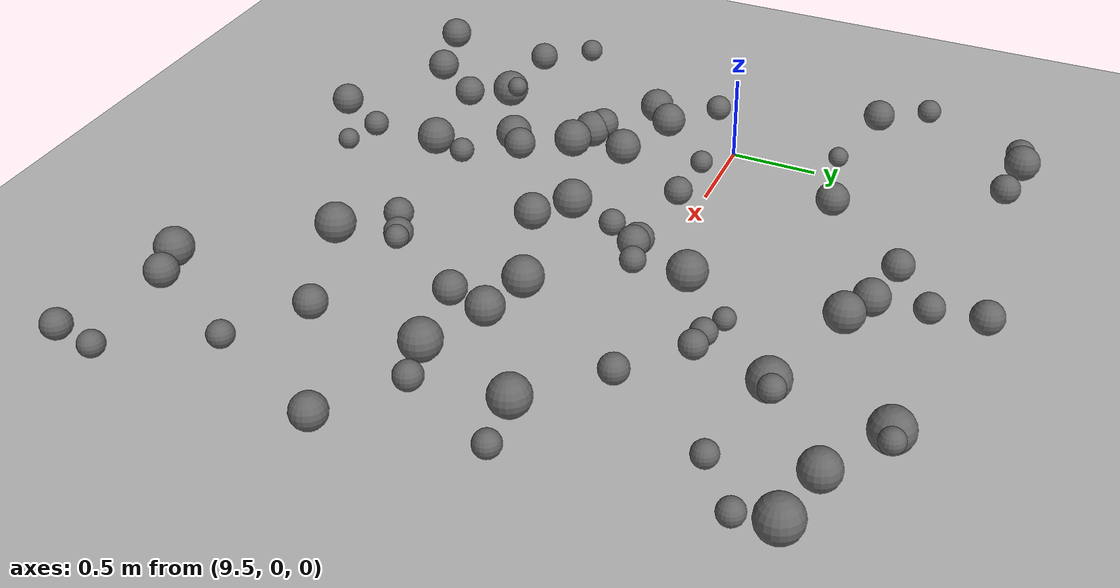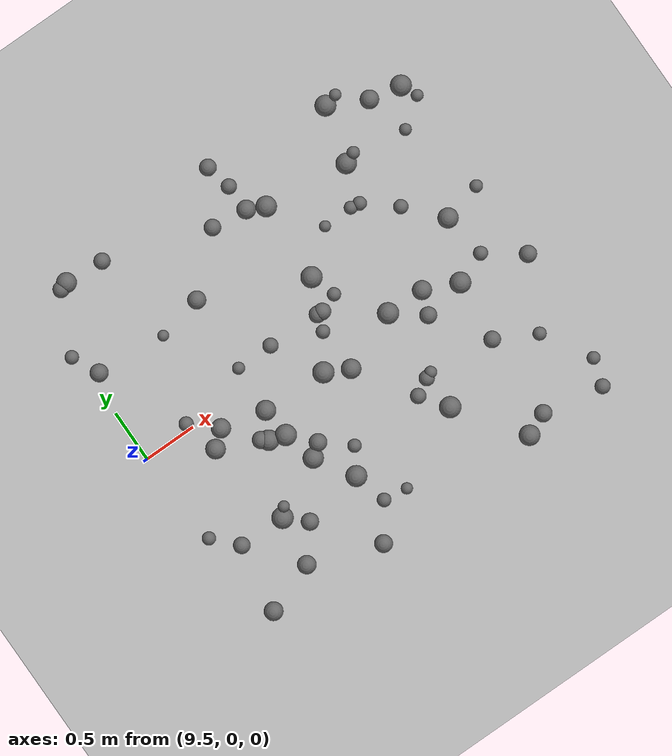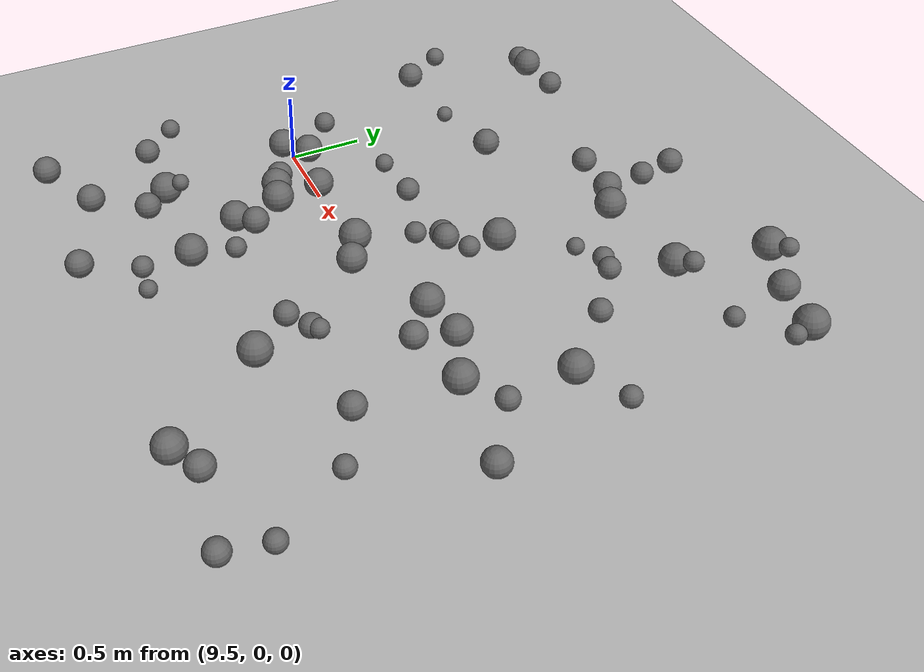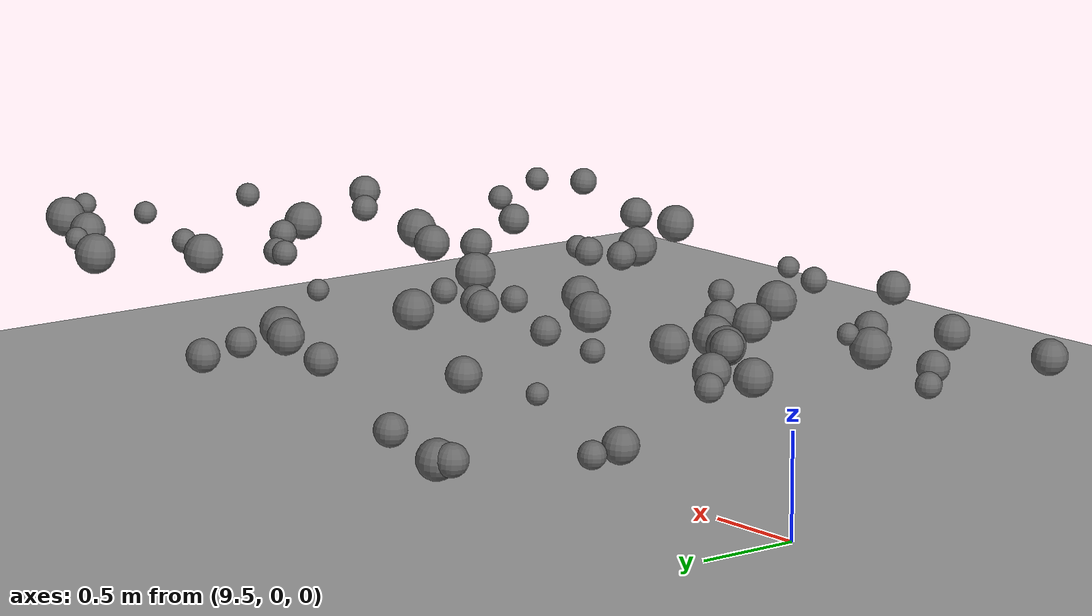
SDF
<sdf version="1.8">
 <world name="extreme_disturbance_parkour">
  <model name="ground_plane">
   <static>true</static>
   <link name="link">
    <collision name="collision">
     <geometry><plane><normal>0 0 1</normal><size>100 100</size></plane></geometry>
     <surface><friction><ode><mu>1.5</mu><mu2>1.5</mu2></ode></friction></surface>
    </collision>
    <visual name="visual">
     <geometry><plane><normal>0 0 1</normal><size>100 100</size></plane></geometry>
     <material><ambient>0.7 0.7 0.7 1</ambient><diffuse>0.7 0.7 0.7 1</diffuse></material>
    </visual>
   </link>
  </model>
  <model name="stone_1">
   <static>true</static>
   <pose>10.0039 0.0550 0.6089 0.0000 -0.1000 0.0000</pose>
   <link name="link">
    <collision name="collision">
     <geometry><sphere><radius>0.0667</radius></sphere></geometry>
     <surface><friction><ode><mu>100.0</mu><mu2>100.0</mu2></ode></friction></surface>
    </collision>
    <visual name="visual">
     <geometry><sphere><radius>0.0667</radius></sphere></geometry>
     <material><ambient>0.3 0.3 0.3 1</ambient><diffuse>0.4 0.4 0.4 1</diffuse></material>
    </visual>
   </link>
  </model>
  <model name="stone_5">
   <static>true</static>
   <pose>11.7191 0.2417 0.7836 0.0000 -0.1000 0.0000</pose>
   <link name="link">
    <collision name="collision">
     <geometry><sphere><radius>0.0618</radius></sphere></geometry>
     <surface><friction><ode><mu>100.0</mu><mu2>100.0</mu2></ode></friction></surface>
    </collision>
    <visual name="visual">
     <geometry><sphere><radius>0.0618</radius></sphere></geometry>
     <material><ambient>0.3 0.3 0.3 1</ambient><diffuse>0.4 0.4 0.4 1</diffuse></material>
    </visual>
   </link>
  </model>
  <model name="stone_6">
   <static>true</static>
   <pose>11.9863 -1.1465 0.7763 0.0000 -0.1000 0.0000</pose>
   <link name="link">
    <collision name="collision">
     <geometry><sphere><radius>0.0970</radius></sphere></geometry>
     <surface><friction><ode><mu>100.0</mu><mu2>100.0</mu2></ode></friction></surface>
    </collision>
    <visual name="visual">
     <geometry><sphere><radius>0.0970</radius></sphere></geometry>
     <material><ambient>0.3 0.3 0.3 1</ambient><diffuse>0.4 0.4 0.4 1</diffuse></material>
    </visual>
   </link>
  </model>
  <model name="stone_12">
   <static>true</static>
   <pose>11.1829 1.3310 0.7065 0.0000 -0.1000 0.0000</pose>
   <link name="link">
    <collision name="collision">
     <geometry><sphere><radius>0.0766</radius></sphere></geometry>
     <surface><friction><ode><mu>100.0</mu><mu2>100.0</mu2></ode></friction></surface>
    </collision>
    <visual name="visual">
     <geometry><sphere><radius>0.0766</radius></sphere></geometry>
     <material><ambient>0.3 0.3 0.3 1</ambient><diffuse>0.4 0.4 0.4 1</diffuse></material>
    </visual>
   </link>
  </model>
  <model name="stone_13">
   <static>true</static>
   <pose>10.1640 -1.5656 0.6086 0.0000 -0.1000 0.0000</pose>
   <link name="link">
    <collision name="collision">
     <geometry><sphere><radius>0.0853</radius></sphere></geometry>
     <surface><friction><ode><mu>100.0</mu><mu2>100.0</mu2></ode></friction></surface>
    </collision>
    <visual name="visual">
     <geometry><sphere><radius>0.0853</radius></sphere></geometry>
     <material><ambient>0.3 0.3 0.3 1</ambient><diffuse>0.4 0.4 0.4 1</diffuse></material>
    </visual>
   </link>
  </model>
  <model name="stone_18">
   <static>true</static>
   <pose>9.5118 1.1131 0.5669 0.0000 -0.1000 0.0000</pose>
   <link name="link">
    <collision name="collision">
     <geometry><sphere><radius>0.0633</radius></sphere></geometry>
     <surface><friction><ode><mu>100.0</mu><mu2>100.0</mu2></ode></friction></surface>
    </collision>
    <visual name="visual">
     <geometry><sphere><radius>0.0633</radius></sphere></geometry>
     <material><ambient>0.3 0.3 0.3 1</ambient><diffuse>0.4 0.4 0.4 1</diffuse></material>
    </visual>
   </link>
  </model>
  <model name="stone_19">
   <static>true</static>
   <pose>10.2241 -1.1076 0.5861 0.0000 -0.1000 0.0000</pose>
   <link name="link">
    <collision name="collision">
     <geometry><sphere><radius>0.0982</radius></sphere></geometry>
     <surface><friction><ode><mu>100.0</mu><mu2>100.0</mu2></ode></friction></surface>
    </collision>
    <visual name="visual">
     <geometry><sphere><radius>0.0982</radius></sphere></geometry>
     <material><ambient>0.3 0.3 0.3 1</ambient><diffuse>0.4 0.4 0.4 1</diffuse></material>
    </visual>
   </link>
  </model>
  <model name="stone_20">
   <static>true</static>
   <pose>11.5009 0.1807 0.7408 0.0000 -0.1000 0.0000</pose>
   <link name="link">
    <collision name="collision">
     <geometry><sphere><radius>0.0770</radius></sphere></geometry>
     <surface><friction><ode><mu>100.0</mu><mu2>100.0</mu2></ode></friction></surface>
    </collision>
    <visual name="visual">
     <geometry><sphere><radius>0.0770</radius></sphere></geometry>
     <material><ambient>0.3 0.3 0.3 1</ambient><diffuse>0.4 0.4 0.4 1</diffuse></material>
    </visual>
   </link>
  </model>
  <model name="stone_23">
   <static>true</static>
   <pose>12.0195 -0.7975 0.8147 0.0000 -0.1000 0.0000</pose>
   <link name="link">
    <collision name="collision">
     <geometry><sphere><radius>0.0561</radius></sphere></geometry>
     <surface><friction><ode><mu>100.0</mu><mu2>100.0</mu2></ode></friction></surface>
    </collision>
    <visual name="visual">
     <geometry><sphere><radius>0.0561</radius></sphere></geometry>
     <material><ambient>0.3 0.3 0.3 1</ambient><diffuse>0.4 0.4 0.4 1</diffuse></material>
    </visual>
   </link>
  </model>
  <model name="stone_26">
   <static>true</static>
   <pose>10.7482 -0.8293 0.6526 0.0000 -0.1000 0.0000</pose>
   <link name="link">
    <collision name="collision">
     <geometry><sphere><radius>0.0933</radius></sphere></geometry>
     <surface><friction><ode><mu>100.0</mu><mu2>100.0</mu2></ode></friction></surface>
    </collision>
    <visual name="visual">
     <geometry><sphere><radius>0.0933</radius></sphere></geometry>
     <material><ambient>0.3 0.3 0.3 1</ambient><diffuse>0.4 0.4 0.4 1</diffuse></material>
    </visual>
   </link>
  </model>
  <model name="stone_27">
   <static>true</static>
   <pose>11.4536 0.0299 0.7607 0.0000 -0.1000 0.0000</pose>
   <link name="link">
    <collision name="collision">
     <geometry><sphere><radius>0.0632</radius></sphere></geometry>
     <surface><friction><ode><mu>100.0</mu><mu2>100.0</mu2></ode></friction></surface>
    </collision>
    <visual name="visual">
     <geometry><sphere><radius>0.0632</radius></sphere></geometry>
     <material><ambient>0.3 0.3 0.3 1</ambient><diffuse>0.4 0.4 0.4 1</diffuse></material>
    </visual>
   </link>
  </model>
  <model name="stone_28">
   <static>true</static>
   <pose>10.6470 -0.2477 0.6514 0.0000 -0.1000 0.0000</pose>
   <link name="link">
    <collision name="collision">
     <geometry><sphere><radius>0.0914</radius></sphere></geometry>
     <surface><friction><ode><mu>100.0</mu><mu2>100.0</mu2></ode></friction></surface>
    </collision>
    <visual name="visual">
     <geometry><sphere><radius>0.0914</radius></sphere></geometry>
     <material><ambient>0.3 0.3 0.3 1</ambient><diffuse>0.4 0.4 0.4 1</diffuse></material>
    </visual>
   </link>
  </model>
  <model name="stone_29">
   <static>true</static>
   <pose>11.6739 1.2102 0.7517 0.0000 -0.1000 0.0000</pose>
   <link name="link">
    <collision name="collision">
     <geometry><sphere><radius>0.0941</radius></sphere></geometry>
     <surface><friction><ode><mu>100.0</mu><mu2>100.0</mu2></ode></friction></surface>
    </collision>
    <visual name="visual">
     <geometry><sphere><radius>0.0941</radius></sphere></geometry>
     <material><ambient>0.3 0.3 0.3 1</ambient><diffuse>0.4 0.4 0.4 1</diffuse></material>
    </visual>
   </link>
  </model>
  <model name="stone_30">
   <static>true</static>
   <pose>9.7909 -1.1007 0.5772 0.0000 -0.1000 0.0000</pose>
   <link name="link">
    <collision name="collision">
     <geometry><sphere><radius>0.0772</radius></sphere></geometry>
     <surface><friction><ode><mu>100.0</mu><mu2>100.0</mu2></ode></friction></surface>
    </collision>
    <visual name="visual">
     <geometry><sphere><radius>0.0772</radius></sphere></geometry>
     <material><ambient>0.3 0.3 0.3 1</ambient><diffuse>0.4 0.4 0.4 1</diffuse></material>
    </visual>
   </link>
  </model>
  <model name="stone_32">
   <static>true</static>
   <pose>9.8498 1.6785 0.5675 0.0000 -0.1000 0.0000</pose>
   <link name="link">
    <collision name="collision">
     <geometry><sphere><radius>0.0921</radius></sphere></geometry>
     <surface><friction><ode><mu>100.0</mu><mu2>100.0</mu2></ode></friction></surface>
    </collision>
    <visual name="visual">
     <geometry><sphere><radius>0.0921</radius></sphere></geometry>
     <material><ambient>0.3 0.3 0.3 1</ambient><diffuse>0.4 0.4 0.4 1</diffuse></material>
    </visual>
   </link>
  </model>
  <model name="stone_33">
   <static>true</static>
   <pose>9.5877 -0.8852 0.5619 0.0000 -0.1000 0.0000</pose>
   <link name="link">
    <collision name="collision">
     <geometry><sphere><radius>0.0619</radius></sphere></geometry>
     <surface><friction><ode><mu>100.0</mu><mu2>100.0</mu2></ode></friction></surface>
    </collision>
    <visual name="visual">
     <geometry><sphere><radius>0.0619</radius></sphere></geometry>
     <material><ambient>0.3 0.3 0.3 1</ambient><diffuse>0.4 0.4 0.4 1</diffuse></material>
    </visual>
   </link>
  </model>
  <model name="stone_35">
   <static>true</static>
   <pose>10.9681 -1.1745 0.6739 0.0000 -0.1000 0.0000</pose>
   <link name="link">
    <collision name="collision">
     <geometry><sphere><radius>0.0961</radius></sphere></geometry>
     <surface><friction><ode><mu>100.0</mu><mu2>100.0</mu2></ode></friction></surface>
    </collision>
    <visual name="visual">
     <geometry><sphere><radius>0.0961</radius></sphere></geometry>
     <material><ambient>0.3 0.3 0.3 1</ambient><diffuse>0.4 0.4 0.4 1</diffuse></material>
    </visual>
   </link>
  </model>
  <model name="stone_37">
   <static>true</static>
   <pose>10.2843 0.8051 0.6389 0.0000 -0.1000 0.0000</pose>
   <link name="link">
    <collision name="collision">
     <geometry><sphere><radius>0.0508</radius></sphere></geometry>
     <surface><friction><ode><mu>100.0</mu><mu2>100.0</mu2></ode></friction></surface>
    </collision>
    <visual name="visual">
     <geometry><sphere><radius>0.0508</radius></sphere></geometry>
     <material><ambient>0.3 0.3 0.3 1</ambient><diffuse>0.4 0.4 0.4 1</diffuse></material>
    </visual>
   </link>
  </model>
  <model name="stone_40">
   <static>true</static>
   <pose>10.2325 -0.1514 0.6092 0.0000 -0.1000 0.0000</pose>
   <link name="link">
    <collision name="collision">
     <geometry><sphere><radius>0.0893</radius></sphere></geometry>
     <surface><friction><ode><mu>100.0</mu><mu2>100.0</mu2></ode></friction></surface>
    </collision>
    <visual name="visual">
     <geometry><sphere><radius>0.0893</radius></sphere></geometry>
     <material><ambient>0.3 0.3 0.3 1</ambient><diffuse>0.4 0.4 0.4 1</diffuse></material>
    </visual>
   </link>
  </model>
  <model name="stone_41">
   <static>true</static>
   <pose>11.5058 1.5406 0.7559 0.0000 -0.1000 0.0000</pose>
   <link name="link">
    <collision name="collision">
     <geometry><sphere><radius>0.0701</radius></sphere></geometry>
     <surface><friction><ode><mu>100.0</mu><mu2>100.0</mu2></ode></friction></surface>
    </collision>
    <visual name="visual">
     <geometry><sphere><radius>0.0701</radius></sphere></geometry>
     <material><ambient>0.3 0.3 0.3 1</ambient><diffuse>0.4 0.4 0.4 1</diffuse></material>
    </visual>
   </link>
  </model>
  <model name="stone_42">
   <static>true</static>
   <pose>10.2178 1.6508 0.6196 0.0000 -0.1000 0.0000</pose>
   <link name="link">
    <collision name="collision">
     <geometry><sphere><radius>0.0754</radius></sphere></geometry>
     <surface><friction><ode><mu>100.0</mu><mu2>100.0</mu2></ode></friction></surface>
    </collision>
    <visual name="visual">
     <geometry><sphere><radius>0.0754</radius></sphere></geometry>
     <material><ambient>0.3 0.3 0.3 1</ambient><diffuse>0.4 0.4 0.4 1</diffuse></material>
    </visual>
   </link>
  </model>
  <model name="stone_43">
   <static>true</static>
   <pose>10.8251 -1.7958 0.6783 0.0000 -0.1000 0.0000</pose>
   <link name="link">
    <collision name="collision">
     <geometry><sphere><radius>0.0821</radius></sphere></geometry>
     <surface><friction><ode><mu>100.0</mu><mu2>100.0</mu2></ode></friction></surface>
    </collision>
    <visual name="visual">
     <geometry><sphere><radius>0.0821</radius></sphere></geometry>
     <material><ambient>0.3 0.3 0.3 1</ambient><diffuse>0.4 0.4 0.4 1</diffuse></material>
    </visual>
   </link>
  </model>
  <model name="stone_45">
   <static>true</static>
   <pose>10.6666 -0.5256 0.6468 0.0000 -0.1000 0.0000</pose>
   <link name="link">
    <collision name="collision">
     <geometry><sphere><radius>0.0976</radius></sphere></geometry>
     <surface><friction><ode><mu>100.0</mu><mu2>100.0</mu2></ode></friction></surface>
    </collision>
    <visual name="visual">
     <geometry><sphere><radius>0.0976</radius></sphere></geometry>
     <material><ambient>0.3 0.3 0.3 1</ambient><diffuse>0.4 0.4 0.4 1</diffuse></material>
    </visual>
   </link>
  </model>
  <model name="stone_46">
   <static>true</static>
   <pose>9.7780 1.6553 0.5763 0.0000 -0.1000 0.0000</pose>
   <link name="link">
    <collision name="collision">
     <geometry><sphere><radius>0.0758</radius></sphere></geometry>
     <surface><friction><ode><mu>100.0</mu><mu2>100.0</mu2></ode></friction></surface>
    </collision>
    <visual name="visual">
     <geometry><sphere><radius>0.0758</radius></sphere></geometry>
     <material><ambient>0.3 0.3 0.3 1</ambient><diffuse>0.4 0.4 0.4 1</diffuse></material>
    </visual>
   </link>
  </model>
  <model name="stone_47">
   <static>true</static>
   <pose>12.0115 -0.1642 0.7707 0.0000 -0.1000 0.0000</pose>
   <link name="link">
    <collision name="collision">
     <geometry><sphere><radius>0.0964</radius></sphere></geometry>
     <surface><friction><ode><mu>100.0</mu><mu2>100.0</mu2></ode></friction></surface>
    </collision>
    <visual name="visual">
     <geometry><sphere><radius>0.0964</radius></sphere></geometry>
     <material><ambient>0.3 0.3 0.3 1</ambient><diffuse>0.4 0.4 0.4 1</diffuse></material>
    </visual>
   </link>
  </model>
  <model name="stone_49">
   <static>true</static>
   <pose>9.6868 -1.7377 0.5513 0.0000 -0.1000 0.0000</pose>
   <link name="link">
    <collision name="collision">
     <geometry><sphere><radius>0.0868</radius></sphere></geometry>
     <surface><friction><ode><mu>100.0</mu><mu2>100.0</mu2></ode></friction></surface>
    </collision>
    <visual name="visual">
     <geometry><sphere><radius>0.0868</radius></sphere></geometry>
     <material><ambient>0.3 0.3 0.3 1</ambient><diffuse>0.4 0.4 0.4 1</diffuse></material>
    </visual>
   </link>
  </model>
  <model name="stone_50">
   <static>true</static>
   <pose>11.2524 -0.2642 0.6929 0.0000 -0.1000 0.0000</pose>
   <link name="link">
    <collision name="collision">
     <geometry><sphere><radius>0.0968</radius></sphere></geometry>
     <surface><friction><ode><mu>100.0</mu><mu2>100.0</mu2></ode></friction></surface>
    </collision>
    <visual name="visual">
     <geometry><sphere><radius>0.0968</radius></sphere></geometry>
     <material><ambient>0.3 0.3 0.3 1</ambient><diffuse>0.4 0.4 0.4 1</diffuse></material>
    </visual>
   </link>
  </model>
  <model name="stone_53">
   <static>true</static>
   <pose>11.4695 -0.3773 0.7248 0.0000 -0.1000 0.0000</pose>
   <link name="link">
    <collision name="collision">
     <geometry><sphere><radius>0.0893</radius></sphere></geometry>
     <surface><friction><ode><mu>100.0</mu><mu2>100.0</mu2></ode></friction></surface>
    </collision>
    <visual name="visual">
     <geometry><sphere><radius>0.0893</radius></sphere></geometry>
     <material><ambient>0.3 0.3 0.3 1</ambient><diffuse>0.4 0.4 0.4 1</diffuse></material>
    </visual>
   </link>
  </model>
  <model name="stone_55">
   <static>true</static>
   <pose>10.8614 -0.7398 0.6738 0.0000 -0.1000 0.0000</pose>
   <link name="link">
    <collision name="collision">
     <geometry><sphere><radius>0.0810</radius></sphere></geometry>
     <surface><friction><ode><mu>100.0</mu><mu2>100.0</mu2></ode></friction></surface>
    </collision>
    <visual name="visual">
     <geometry><sphere><radius>0.0810</radius></sphere></geometry>
     <material><ambient>0.3 0.3 0.3 1</ambient><diffuse>0.4 0.4 0.4 1</diffuse></material>
    </visual>
   </link>
  </model>
  <model name="stone_58">
   <static>true</static>
   <pose>11.1083 -0.9459 0.7224 0.0000 -0.1000 0.0000</pose>
   <link name="link">
    <collision name="collision">
     <geometry><sphere><radius>0.0616</radius></sphere></geometry>
     <surface><friction><ode><mu>100.0</mu><mu2>100.0</mu2></ode></friction></surface>
    </collision>
    <visual name="visual">
     <geometry><sphere><radius>0.0616</radius></sphere></geometry>
     <material><ambient>0.3 0.3 0.3 1</ambient><diffuse>0.4 0.4 0.4 1</diffuse></material>
    </visual>
   </link>
  </model>
  <model name="stone_60">
   <static>true</static>
   <pose>11.0488 -1.4825 0.7199 0.0000 -0.1000 0.0000</pose>
   <link name="link">
    <collision name="collision">
     <geometry><sphere><radius>0.0637</radius></sphere></geometry>
     <surface><friction><ode><mu>100.0</mu><mu2>100.0</mu2></ode></friction></surface>
    </collision>
    <visual name="visual">
     <geometry><sphere><radius>0.0637</radius></sphere></geometry>
     <material><ambient>0.3 0.3 0.3 1</ambient><diffuse>0.4 0.4 0.4 1</diffuse></material>
    </visual>
   </link>
  </model>
  <model name="stone_67">
   <static>true</static>
   <pose>10.4041 -1.2712 0.6272 0.0000 -0.1000 0.0000</pose>
   <link name="link">
    <collision name="collision">
     <geometry><sphere><radius>0.0801</radius></sphere></geometry>
     <surface><friction><ode><mu>100.0</mu><mu2>100.0</mu2></ode></friction></surface>
    </collision>
    <visual name="visual">
     <geometry><sphere><radius>0.0801</radius></sphere></geometry>
     <material><ambient>0.3 0.3 0.3 1</ambient><diffuse>0.4 0.4 0.4 1</diffuse></material>
    </visual>
   </link>
  </model>
  <model name="stone_68">
   <static>true</static>
   <pose>10.6639 0.1913 0.6769 0.0000 -0.1000 0.0000</pose>
   <link name="link">
    <collision name="collision">
     <geometry><sphere><radius>0.0567</radius></sphere></geometry>
     <surface><friction><ode><mu>100.0</mu><mu2>100.0</mu2></ode></friction></surface>
    </collision>
    <visual name="visual">
     <geometry><sphere><radius>0.0567</radius></sphere></geometry>
     <material><ambient>0.3 0.3 0.3 1</ambient><diffuse>0.4 0.4 0.4 1</diffuse></material>
    </visual>
   </link>
  </model>
  <model name="stone_69">
   <static>true</static>
   <pose>11.2702 -1.5127 0.7431 0.0000 -0.1000 0.0000</pose>
   <link name="link">
    <collision name="collision">
     <geometry><sphere><radius>0.0530</radius></sphere></geometry>
     <surface><friction><ode><mu>100.0</mu><mu2>100.0</mu2></ode></friction></surface>
    </collision>
    <visual name="visual">
     <geometry><sphere><radius>0.0530</radius></sphere></geometry>
     <material><ambient>0.3 0.3 0.3 1</ambient><diffuse>0.4 0.4 0.4 1</diffuse></material>
    </visual>
   </link>
  </model>
  <model name="stone_70">
   <static>true</static>
   <pose>11.8132 -0.9064 0.7894 0.0000 -0.1000 0.0000</pose>
   <link name="link">
    <collision name="collision">
     <geometry><sphere><radius>0.0709</radius></sphere></geometry>
     <surface><friction><ode><mu>100.0</mu><mu2>100.0</mu2></ode></friction></surface>
    </collision>
    <visual name="visual">
     <geometry><sphere><radius>0.0709</radius></sphere></geometry>
     <material><ambient>0.3 0.3 0.3 1</ambient><diffuse>0.4 0.4 0.4 1</diffuse></material>
    </visual>
   </link>
  </model>
  <model name="stone_73">
   <static>true</static>
   <pose>11.5494 0.1773 0.7546 0.0000 -0.1000 0.0000</pose>
   <link name="link">
    <collision name="collision">
     <geometry><sphere><radius>0.0776</radius></sphere></geometry>
     <surface><friction><ode><mu>100.0</mu><mu2>100.0</mu2></ode></friction></surface>
    </collision>
    <visual name="visual">
     <geometry><sphere><radius>0.0776</radius></sphere></geometry>
     <material><ambient>0.3 0.3 0.3 1</ambient><diffuse>0.4 0.4 0.4 1</diffuse></material>
    </visual>
   </link>
  </model>
  <model name="stone_81">
   <static>true</static>
   <pose>10.7056 0.8921 0.6616 0.0000 -0.1000 0.0000</pose>
   <link name="link">
    <collision name="collision">
     <geometry><sphere><radius>0.0834</radius></sphere></geometry>
     <surface><friction><ode><mu>100.0</mu><mu2>100.0</mu2></ode></friction></surface>
    </collision>
    <visual name="visual">
     <geometry><sphere><radius>0.0834</radius></sphere></geometry>
     <material><ambient>0.3 0.3 0.3 1</ambient><diffuse>0.4 0.4 0.4 1</diffuse></material>
    </visual>
   </link>
  </model>
  <model name="stone_89">
   <static>true</static>
   <pose>10.0877 -0.2739 0.5928 0.0000 -0.1000 0.0000</pose>
   <link name="link">
    <collision name="collision">
     <geometry><sphere><radius>0.0906</radius></sphere></geometry>
     <surface><friction><ode><mu>100.0</mu><mu2>100.0</mu2></ode></friction></surface>
    </collision>
    <visual name="visual">
     <geometry><sphere><radius>0.0906</radius></sphere></geometry>
     <material><ambient>0.3 0.3 0.3 1</ambient><diffuse>0.4 0.4 0.4 1</diffuse></material>
    </visual>
   </link>
  </model>
  <model name="stone_97">
   <static>true</static>
   <pose>11.0070 0.1935 0.7097 0.0000 -0.1000 0.0000</pose>
   <link name="link">
    <collision name="collision">
     <geometry><sphere><radius>0.0701</radius></sphere></geometry>
     <surface><friction><ode><mu>100.0</mu><mu2>100.0</mu2></ode></friction></surface>
    </collision>
    <visual name="visual">
     <geometry><sphere><radius>0.0701</radius></sphere></geometry>
     <material><ambient>0.3 0.3 0.3 1</ambient><diffuse>0.4 0.4 0.4 1</diffuse></material>
    </visual>
   </link>
  </model>
  <model name="stone_102">
   <static>true</static>
   <pose>11.9631 -0.8219 0.7969 0.0000 -0.1000 0.0000</pose>
   <link name="link">
    <collision name="collision">
     <geometry><sphere><radius>0.0700</radius></sphere></geometry>
     <surface><friction><ode><mu>100.0</mu><mu2>100.0</mu2></ode></friction></surface>
    </collision>
    <visual name="visual">
     <geometry><sphere><radius>0.0700</radius></sphere></geometry>
     <material><ambient>0.3 0.3 0.3 1</ambient><diffuse>0.4 0.4 0.4 1</diffuse></material>
    </visual>
   </link>
  </model>
  <model name="stone_103">
   <static>true</static>
   <pose>10.5182 -0.4784 0.6315 0.0000 -0.1000 0.0000</pose>
   <link name="link">
    <collision name="collision">
     <geometry><sphere><radius>0.0941</radius></sphere></geometry>
     <surface><friction><ode><mu>100.0</mu><mu2>100.0</mu2></ode></friction></surface>
    </collision>
    <visual name="visual">
     <geometry><sphere><radius>0.0941</radius></sphere></geometry>
     <material><ambient>0.3 0.3 0.3 1</ambient><diffuse>0.4 0.4 0.4 1</diffuse></material>
    </visual>
   </link>
  </model>
  <model name="stone_104">
   <static>true</static>
   <pose>11.5156 1.2890 0.7461 0.0000 -0.1000 0.0000</pose>
   <link name="link">
    <collision name="collision">
     <geometry><sphere><radius>0.0859</radius></sphere></geometry>
     <surface><friction><ode><mu>100.0</mu><mu2>100.0</mu2></ode></friction></surface>
    </collision>
    <visual name="visual">
     <geometry><sphere><radius>0.0859</radius></sphere></geometry>
     <material><ambient>0.3 0.3 0.3 1</ambient><diffuse>0.4 0.4 0.4 1</diffuse></material>
    </visual>
   </link>
  </model>
  <model name="stone_105">
   <static>true</static>
   <pose>10.4632 -0.4366 0.6463 0.0000 -0.1000 0.0000</pose>
   <link name="link">
    <collision name="collision">
     <geometry><sphere><radius>0.0794</radius></sphere></geometry>
     <surface><friction><ode><mu>100.0</mu><mu2>100.0</mu2></ode></friction></surface>
    </collision>
    <visual name="visual">
     <geometry><sphere><radius>0.0794</radius></sphere></geometry>
     <material><ambient>0.3 0.3 0.3 1</ambient><diffuse>0.4 0.4 0.4 1</diffuse></material>
    </visual>
   </link>
  </model>
  <model name="stone_106">
   <static>true</static>
   <pose>11.4513 1.7822 0.7397 0.0000 -0.1000 0.0000</pose>
   <link name="link">
    <collision name="collision">
     <geometry><sphere><radius>0.0773</radius></sphere></geometry>
     <surface><friction><ode><mu>100.0</mu><mu2>100.0</mu2></ode></friction></surface>
    </collision>
    <visual name="visual">
     <geometry><sphere><radius>0.0773</radius></sphere></geometry>
     <material><ambient>0.3 0.3 0.3 1</ambient><diffuse>0.4 0.4 0.4 1</diffuse></material>
    </visual>
   </link>
  </model>
  <model name="stone_107">
   <static>true</static>
   <pose>10.2933 -1.0292 0.6501 0.0000 -0.1000 0.0000</pose>
   <link name="link">
    <collision name="collision">
     <geometry><sphere><radius>0.0527</radius></sphere></geometry>
     <surface><friction><ode><mu>100.0</mu><mu2>100.0</mu2></ode></friction></surface>
    </collision>
    <visual name="visual">
     <geometry><sphere><radius>0.0527</radius></sphere></geometry>
     <material><ambient>0.3 0.3 0.3 1</ambient><diffuse>0.4 0.4 0.4 1</diffuse></material>
    </visual>
   </link>
  </model>
  <model name="stone_109">
   <static>true</static>
   <pose>11.9942 0.7718 0.8113 0.0000 -0.1000 0.0000</pose>
   <link name="link">
    <collision name="collision">
     <geometry><sphere><radius>0.0516</radius></sphere></geometry>
     <surface><friction><ode><mu>100.0</mu><mu2>100.0</mu2></ode></friction></surface>
    </collision>
    <visual name="visual">
     <geometry><sphere><radius>0.0516</radius></sphere></geometry>
     <material><ambient>0.3 0.3 0.3 1</ambient><diffuse>0.4 0.4 0.4 1</diffuse></material>
    </visual>
   </link>
  </model>
  <model name="stone_111">
   <static>true</static>
   <pose>9.6291 0.8640 0.5461 0.0000 -0.1000 0.0000</pose>
   <link name="link">
    <collision name="collision">
     <geometry><sphere><radius>0.0833</radius></sphere></geometry>
     <surface><friction><ode><mu>100.0</mu><mu2>100.0</mu2></ode></friction></surface>
    </collision>
    <visual name="visual">
     <geometry><sphere><radius>0.0833</radius></sphere></geometry>
     <material><ambient>0.3 0.3 0.3 1</ambient><diffuse>0.4 0.4 0.4 1</diffuse></material>
    </visual>
   </link>
  </model>
  <model name="stone_116">
   <static>true</static>
   <pose>11.6443 0.4774 0.7389 0.0000 -0.1000 0.0000</pose>
   <link name="link">
    <collision name="collision">
     <geometry><sphere><radius>0.0966</radius></sphere></geometry>
     <surface><friction><ode><mu>100.0</mu><mu2>100.0</mu2></ode></friction></surface>
    </collision>
    <visual name="visual">
     <geometry><sphere><radius>0.0966</radius></sphere></geometry>
     <material><ambient>0.3 0.3 0.3 1</ambient><diffuse>0.4 0.4 0.4 1</diffuse></material>
    </visual>
   </link>
  </model>
  <model name="stone_121">
   <static>true</static>
   <pose>12.9304 1.4407 1.0330 0.0700 -0.1000 0.0000</pose>
   <link name="link">
    <collision name="collision">
     <geometry><sphere><radius>0.0839</radius></sphere></geometry>
     <surface><friction><ode><mu>100.0</mu><mu2>100.0</mu2></ode></friction></surface>
    </collision>
    <visual name="visual">
     <geometry><sphere><radius>0.0839</radius></sphere></geometry>
     <material><ambient>0.3 0.3 0.3 1</ambient><diffuse>0.4 0.4 0.4 1</diffuse></material>
    </visual>
   </link>
  </model>
  <model name="stone_122">
   <static>true</static>
   <pose>12.4525 1.1062 0.9538 0.0700 -0.1000 0.0000</pose>
   <link name="link">
    <collision name="collision">
     <geometry><sphere><radius>0.0925</radius></sphere></geometry>
     <surface><friction><ode><mu>100.0</mu><mu2>100.0</mu2></ode></friction></surface>
    </collision>
    <visual name="visual">
     <geometry><sphere><radius>0.0925</radius></sphere></geometry>
     <material><ambient>0.3 0.3 0.3 1</ambient><diffuse>0.4 0.4 0.4 1</diffuse></material>
    </visual>
   </link>
  </model>
  <model name="stone_126">
   <static>true</static>
   <pose>13.2848 1.2307 1.0748 0.0700 -0.1000 0.0000</pose>
   <link name="link">
    <collision name="collision">
     <geometry><sphere><radius>0.0546</radius></sphere></geometry>
     <surface><friction><ode><mu>100.0</mu><mu2>100.0</mu2></ode></friction></surface>
    </collision>
    <visual name="visual">
     <geometry><sphere><radius>0.0546</radius></sphere></geometry>
     <material><ambient>0.3 0.3 0.3 1</ambient><diffuse>0.4 0.4 0.4 1</diffuse></material>
    </visual>
   </link>
  </model>
  <model name="stone_136">
   <static>true</static>
   <pose>13.2207 1.3825 1.0435 0.0700 -0.1000 0.0000</pose>
   <link name="link">
    <collision name="collision">
     <geometry><sphere><radius>0.0939</radius></sphere></geometry>
     <surface><friction><ode><mu>100.0</mu><mu2>100.0</mu2></ode></friction></surface>
    </collision>
    <visual name="visual">
     <geometry><sphere><radius>0.0939</radius></sphere></geometry>
     <material><ambient>0.3 0.3 0.3 1</ambient><diffuse>0.4 0.4 0.4 1</diffuse></material>
    </visual>
   </link>
  </model>
  <model name="stone_146">
   <static>true</static>
   <pose>13.2495 -1.5047 0.8837 0.0700 -0.1000 0.0000</pose>
   <link name="link">
    <collision name="collision">
     <geometry><sphere><radius>0.0593</radius></sphere></geometry>
     <surface><friction><ode><mu>100.0</mu><mu2>100.0</mu2></ode></friction></surface>
    </collision>
    <visual name="visual">
     <geometry><sphere><radius>0.0593</radius></sphere></geometry>
     <material><ambient>0.3 0.3 0.3 1</ambient><diffuse>0.4 0.4 0.4 1</diffuse></material>
    </visual>
   </link>
  </model>
  <model name="stone_151">
   <static>true</static>
   <pose>12.2657 0.7710 0.9428 0.0700 -0.1000 0.0000</pose>
   <link name="link">
    <collision name="collision">
     <geometry><sphere><radius>0.0597</radius></sphere></geometry>
     <surface><friction><ode><mu>100.0</mu><mu2>100.0</mu2></ode></friction></surface>
    </collision>
    <visual name="visual">
     <geometry><sphere><radius>0.0597</radius></sphere></geometry>
     <material><ambient>0.3 0.3 0.3 1</ambient><diffuse>0.4 0.4 0.4 1</diffuse></material>
    </visual>
   </link>
  </model>
  <model name="stone_157">
   <static>true</static>
   <pose>13.0342 1.0485 1.0505 0.0700 -0.1000 0.0000</pose>
   <link name="link">
    <collision name="collision">
     <geometry><sphere><radius>0.0545</radius></sphere></geometry>
     <surface><friction><ode><mu>100.0</mu><mu2>100.0</mu2></ode></friction></surface>
    </collision>
    <visual name="visual">
     <geometry><sphere><radius>0.0545</radius></sphere></geometry>
     <material><ambient>0.3 0.3 0.3 1</ambient><diffuse>0.4 0.4 0.4 1</diffuse></material>
    </visual>
   </link>
  </model>
  <model name="stone_168">
   <static>true</static>
   <pose>12.6219 -0.8695 0.8475 0.0700 -0.1000 0.0000</pose>
   <link name="link">
    <collision name="collision">
     <geometry><sphere><radius>0.0761</radius></sphere></geometry>
     <surface><friction><ode><mu>100.0</mu><mu2>100.0</mu2></ode></friction></surface>
    </collision>
    <visual name="visual">
     <geometry><sphere><radius>0.0761</radius></sphere></geometry>
     <material><ambient>0.3 0.3 0.3 1</ambient><diffuse>0.4 0.4 0.4 1</diffuse></material>
    </visual>
   </link>
  </model>
  <model name="stone_171">
   <static>true</static>
   <pose>12.9863 -1.0636 0.8790 0.0700 -0.1000 0.0000</pose>
   <link name="link">
    <collision name="collision">
     <geometry><sphere><radius>0.0606</radius></sphere></geometry>
     <surface><friction><ode><mu>100.0</mu><mu2>100.0</mu2></ode></friction></surface>
    </collision>
    <visual name="visual">
     <geometry><sphere><radius>0.0606</radius></sphere></geometry>
     <material><ambient>0.3 0.3 0.3 1</ambient><diffuse>0.4 0.4 0.4 1</diffuse></material>
    </visual>
   </link>
  </model>
  <model name="stone_174">
   <static>true</static>
   <pose>12.7093 1.6405 1.0519 0.0700 -0.1000 0.0000</pose>
   <link name="link">
    <collision name="collision">
     <geometry><sphere><radius>0.0534</radius></sphere></geometry>
     <surface><friction><ode><mu>100.0</mu><mu2>100.0</mu2></ode></friction></surface>
    </collision>
    <visual name="visual">
     <geometry><sphere><radius>0.0534</radius></sphere></geometry>
     <material><ambient>0.3 0.3 0.3 1</ambient><diffuse>0.4 0.4 0.4 1</diffuse></material>
    </visual>
   </link>
  </model>
  <model name="stone_176">
   <static>true</static>
   <pose>12.6767 -0.3056 0.8630 0.0700 -0.1000 0.0000</pose>
   <link name="link">
    <collision name="collision">
     <geometry><sphere><radius>0.0951</radius></sphere></geometry>
     <surface><friction><ode><mu>100.0</mu><mu2>100.0</mu2></ode></friction></surface>
    </collision>
    <visual name="visual">
     <geometry><sphere><radius>0.0951</radius></sphere></geometry>
     <material><ambient>0.3 0.3 0.3 1</ambient><diffuse>0.4 0.4 0.4 1</diffuse></material>
    </visual>
   </link>
  </model>
  <model name="stone_181">
   <static>true</static>
   <pose>12.9070 0.2149 0.9283 0.0700 -0.1000 0.0000</pose>
   <link name="link">
    <collision name="collision">
     <geometry><sphere><radius>0.0914</radius></sphere></geometry>
     <surface><friction><ode><mu>100.0</mu><mu2>100.0</mu2></ode></friction></surface>
    </collision>
    <visual name="visual">
     <geometry><sphere><radius>0.0914</radius></sphere></geometry>
     <material><ambient>0.3 0.3 0.3 1</ambient><diffuse>0.4 0.4 0.4 1</diffuse></material>
    </visual>
   </link>
  </model>
  <model name="stone_198">
   <static>true</static>
   <pose>13.2587 0.2999 1.0143 0.0700 -0.1000 0.0000</pose>
   <link name="link">
    <collision name="collision">
     <geometry><sphere><radius>0.0579</radius></sphere></geometry>
     <surface><friction><ode><mu>100.0</mu><mu2>100.0</mu2></ode></friction></surface>
    </collision>
    <visual name="visual">
     <geometry><sphere><radius>0.0579</radius></sphere></geometry>
     <material><ambient>0.3 0.3 0.3 1</ambient><diffuse>0.4 0.4 0.4 1</diffuse></material>
    </visual>
   </link>
  </model>
  <model name="stone_201">
   <static>true</static>
   <pose>13.1746 -1.7539 0.8522 0.0700 -0.1000 0.0000</pose>
   <link name="link">
    <collision name="collision">
     <geometry><sphere><radius>0.0692</radius></sphere></geometry>
     <surface><friction><ode><mu>100.0</mu><mu2>100.0</mu2></ode></friction></surface>
    </collision>
    <visual name="visual">
     <geometry><sphere><radius>0.0692</radius></sphere></geometry>
     <material><ambient>0.3 0.3 0.3 1</ambient><diffuse>0.4 0.4 0.4 1</diffuse></material>
    </visual>
   </link>
  </model>
  <model name="stone_202">
   <static>true</static>
   <pose>12.5901 1.6171 0.9955 0.0700 -0.1000 0.0000</pose>
   <link name="link">
    <collision name="collision">
     <geometry><sphere><radius>0.0943</radius></sphere></geometry>
     <surface><friction><ode><mu>100.0</mu><mu2>100.0</mu2></ode></friction></surface>
    </collision>
    <visual name="visual">
     <geometry><sphere><radius>0.0943</radius></sphere></geometry>
     <material><ambient>0.3 0.3 0.3 1</ambient><diffuse>0.4 0.4 0.4 1</diffuse></material>
    </visual>
   </link>
  </model>
  <model name="stone_208">
   <static>true</static>
   <pose>12.3498 0.7575 0.9374 0.0700 -0.1000 0.0000</pose>
   <link name="link">
    <collision name="collision">
     <geometry><sphere><radius>0.0629</radius></sphere></geometry>
     <surface><friction><ode><mu>100.0</mu><mu2>100.0</mu2></ode></friction></surface>
    </collision>
    <visual name="visual">
     <geometry><sphere><radius>0.0629</radius></sphere></geometry>
     <material><ambient>0.3 0.3 0.3 1</ambient><diffuse>0.4 0.4 0.4 1</diffuse></material>
    </visual>
   </link>
  </model>
  <model name="stone_213">
   <static>true</static>
   <pose>12.5535 1.1454 1.0029 0.0700 -0.1000 0.0000</pose>
   <link name="link">
    <collision name="collision">
     <geometry><sphere><radius>0.0575</radius></sphere></geometry>
     <surface><friction><ode><mu>100.0</mu><mu2>100.0</mu2></ode></friction></surface>
    </collision>
    <visual name="visual">
     <geometry><sphere><radius>0.0575</radius></sphere></geometry>
     <material><ambient>0.3 0.3 0.3 1</ambient><diffuse>0.4 0.4 0.4 1</diffuse></material>
    </visual>
   </link>
  </model>
  <model name="stone_218">
   <static>true</static>
   <pose>12.6260 0.5290 0.9494 0.0700 -0.1000 0.0000</pose>
   <link name="link">
    <collision name="collision">
     <geometry><sphere><radius>0.0654</radius></sphere></geometry>
     <surface><friction><ode><mu>100.0</mu><mu2>100.0</mu2></ode></friction></surface>
    </collision>
    <visual name="visual">
     <geometry><sphere><radius>0.0654</radius></sphere></geometry>
     <material><ambient>0.3 0.3 0.3 1</ambient><diffuse>0.4 0.4 0.4 1</diffuse></material>
    </visual>
   </link>
  </model>
  <model name="stone_219">
   <static>true</static>
   <pose>12.6203 -1.6554 0.7811 0.0700 -0.1000 0.0000</pose>
   <link name="link">
    <collision name="collision">
     <geometry><sphere><radius>0.0803</radius></sphere></geometry>
     <surface><friction><ode><mu>100.0</mu><mu2>100.0</mu2></ode></friction></surface>
    </collision>
    <visual name="visual">
     <geometry><sphere><radius>0.0803</radius></sphere></geometry>
     <material><ambient>0.3 0.3 0.3 1</ambient><diffuse>0.4 0.4 0.4 1</diffuse></material>
    </visual>
   </link>
  </model>
  <model name="stone_221">
   <static>true</static>
   <pose>12.9623 -0.1973 0.9327 0.0700 -0.1000 0.0000</pose>
   <link name="link">
    <collision name="collision">
     <geometry><sphere><radius>0.0643</radius></sphere></geometry>
     <surface><friction><ode><mu>100.0</mu><mu2>100.0</mu2></ode></friction></surface>
    </collision>
    <visual name="visual">
     <geometry><sphere><radius>0.0643</radius></sphere></geometry>
     <material><ambient>0.3 0.3 0.3 1</ambient><diffuse>0.4 0.4 0.4 1</diffuse></material>
    </visual>
   </link>
  </model>
  <model name="stone_229">
   <static>true</static>
   <pose>12.2869 -0.3788 0.8358 0.0700 -0.1000 0.0000</pose>
   <link name="link">
    <collision name="collision">
     <geometry><sphere><radius>0.0775</radius></sphere></geometry>
     <surface><friction><ode><mu>100.0</mu><mu2>100.0</mu2></ode></friction></surface>
    </collision>
    <visual name="visual">
     <geometry><sphere><radius>0.0775</radius></sphere></geometry>
     <material><ambient>0.3 0.3 0.3 1</ambient><diffuse>0.4 0.4 0.4 1</diffuse></material>
    </visual>
   </link>
  </model>
  <model name="stone_233">
   <static>true</static>
   <pose>12.3662 -0.1686 0.8567 0.0700 -0.1000 0.0000</pose>
   <link name="link">
    <collision name="collision">
     <geometry><sphere><radius>0.0872</radius></sphere></geometry>
     <surface><friction><ode><mu>100.0</mu><mu2>100.0</mu2></ode></friction></surface>
    </collision>
    <visual name="visual">
     <geometry><sphere><radius>0.0872</radius></sphere></geometry>
     <material><ambient>0.3 0.3 0.3 1</ambient><diffuse>0.4 0.4 0.4 1</diffuse></material>
    </visual>
   </link>
  </model>
  <model name="stone_234">
   <static>true</static>
   <pose>13.2960 -0.4373 0.9385 0.0700 -0.1000 0.0000</pose>
   <link name="link">
    <collision name="collision">
     <geometry><sphere><radius>0.0785</radius></sphere></geometry>
     <surface><friction><ode><mu>100.0</mu><mu2>100.0</mu2></ode></friction></surface>
    </collision>
    <visual name="visual">
     <geometry><sphere><radius>0.0785</radius></sphere></geometry>
     <material><ambient>0.3 0.3 0.3 1</ambient><diffuse>0.4 0.4 0.4 1</diffuse></material>
    </visual>
   </link>
  </model>
  <model name="stone_238">
   <static>true</static>
   <pose>12.4145 -1.7460 0.7493 0.0700 -0.1000 0.0000</pose>
   <link name="link">
    <collision name="collision">
     <geometry><sphere><radius>0.0940</radius></sphere></geometry>
     <surface><friction><ode><mu>100.0</mu><mu2>100.0</mu2></ode></friction></surface>
    </collision>
    <visual name="visual">
     <geometry><sphere><radius>0.0940</radius></sphere></geometry>
     <material><ambient>0.3 0.3 0.3 1</ambient><diffuse>0.4 0.4 0.4 1</diffuse></material>
    </visual>
   </link>
  </model>
 </world>
</sdf>
